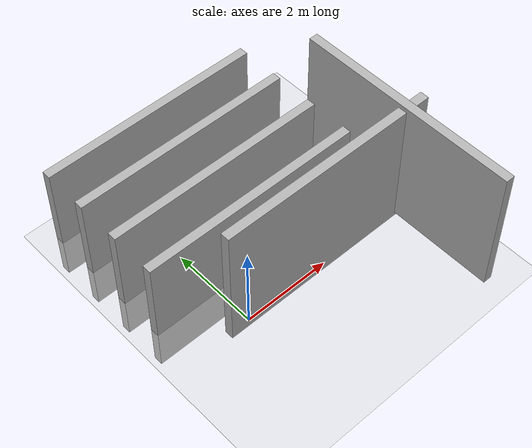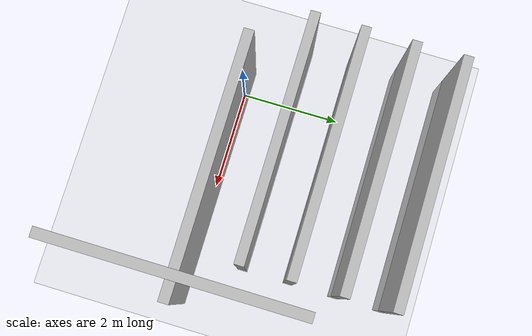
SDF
<sdf version="1.10">
 <world name="car_world">
  <physics name="1ms" type="ignored">
   <max_step_size>0.001</max_step_size>
   <real_time_factor>1</real_time_factor>
   <real_time_update_rate>1000</real_time_update_rate>
  </physics>
  <plugin name="gz::sim::systems::Physics" filename="gz-sim-physics-system"/>
  <plugin name="gz::sim::systems::UserCommands" filename="gz-sim-user-commands-system"/>
  <plugin name="gz::sim::systems::SceneBroadcaster" filename="gz-sim-scene-broadcaster-system"/>
  <plugin filename="gz-sim-sensors-system" name="gz::sim::systems::Sensors">
   <render_engine>ogre2</render_engine>
  </plugin>
  <plugin filename="gz-sim-imu-system" name="gz::sim::systems::Imu"/>
  <plugin filename="gz-sim-navsat-system" name="gz::sim::systems::NavSat"/>
  <spherical_coordinates>
   <surface_model>EARTH_WGS84</surface_model>
   <world_frame_orientation>ENU</world_frame_orientation>
   <latitude_deg>41.2</latitude_deg>
   <longitude_deg>-111.9</longitude_deg>
   <elevation>1200</elevation>
   <heading_deg>0</heading_deg>
  </spherical_coordinates>
  <gravity>0 0 -9.8000000000000007</gravity>
  <magnetic_field>5.5644999999999998e-06 2.2875799999999999e-05 -4.2388400000000002e-05</magnetic_field>
  <atmosphere type="adiabatic"/>
  <scene>
   <ambient>0.400000006 0.400000006 0.400000006 1</ambient>
   <background>0.699999988 0.699999988 0.699999988 1</background>
   <shadows>true</shadows>
  </scene>
  <model name="ground_plane">
   <static>true</static>
   <link name="link">
    <collision name="collision">
     <geometry><plane><normal>0 0 1</normal><size>1 1</size></plane></geometry>
    </collision>
    <visual name="visual">
     <geometry><plane><normal>0 0 1</normal><size>100 100</size></plane></geometry>
     <material>
      <ambient>0.800000012 0.800000012 0.800000012 1</ambient>
      <diffuse>0.800000012 0.800000012 0.800000012 1</diffuse>
      <specular>0.800000012 0.800000012 0.800000012 1</specular>
     </material>
    </visual>
    <inertial>
     <mass>1</mass>
     <inertia><ixx>1</ixx><ixy>0</ixy><ixz>0</ixz><iyy>1</iyy><iyz>0</iyz><izz>1</izz></inertia>
    </inertial>
   </link>
  </model>
  <light name="sun" type="directional">
   <pose>0 0 10 0 0 0</pose>
   <intensity>1</intensity>
   <direction>-0.5 0.10000000000000001 -0.90000000000000002</direction>
   <diffuse>0.800000012 0.800000012 0.800000012 1</diffuse>
   <specular>0.200000003 0.200000003 0.200000003 1</specular>
   <attenuation>
    <range>1000</range>
    <linear>0.0099999997764825821</linear>
    <constant>0.89999997615814209</constant>
    <quadratic>0.0010000000474974513</quadratic>
   </attenuation>
   <spot><inner_angle>0</inner_angle><outer_angle>0</outer_angle><falloff>0</falloff></spot>
  </light>
  <include><pose>1 1 0.5 0 0 0</pose><uri>file:///models/tag0_cube/model.sdf</uri></include>
  <include><pose>1 2 0.5 0 0 0</pose><uri>file:///models/tag1_cube/model.sdf</uri></include>
  <include><pose>1 3 0.5 0 0 0</pose><uri>file:///models/tag2_cube/model.sdf</uri></include>
  <include><pose>1 4 0.5 0 0 0</pose><uri>file:///models/tag3_cube/model.sdf</uri></include>
  <include><pose>4 0 1.6 0 0 1.57</pose><uri>file:///models/big_box/model.sdf</uri></include>
  <include><pose>2 0 1.5 0 0 0</pose><uri>file:///models/big_ball/model.sdf</uri></include>
 </world>
</sdf>

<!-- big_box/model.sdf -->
<sdf version="1.8">
    <model name='box'>
      <pose>0 3 2.5 90 0 0</pose>
      <link name='box_link'>
        <inertial>
          <inertia>
            <ixx>0.16666</ixx>
            <ixy>0</ixy>
            <ixz>0</ixz>
            <iyy>0.16666</iyy>
            <iyz>0</iyz>
            <izz>0.16666</izz>
          </inertia>
          <mass>1</mass>
          <pose>0 0 0 0 0 0</pose>
        </inertial>
        <collision name='box_collision'>
          <geometry>
            <box>
              <size>5 0.5 3</size>
            </box>
          </geometry>
          <surface>
            <friction>
              <ode/>
            </friction>
            <bounce/>
            <contact/>
          </surface>
        </collision>
        <visual name='box_visual'>
          <geometry>
            <box>
              <size>5 0.2 3</size>
            </box>
          </geometry>
          <material>
            <ambient>0.300000012 0.300000012 0.300000012 1</ambient>
            <diffuse>0.699999988 0.699999988 0.699999988 1</diffuse>
            <specular>1 1 1 1</specular>
          </material>
        </visual>
        <pose>0 0 0 0 0 0</pose>
        <enable_wind>false</enable_wind>
      </link>
      <static>false</static>
      <self_collide>false</self_collide>
    </model>
</sdf>
